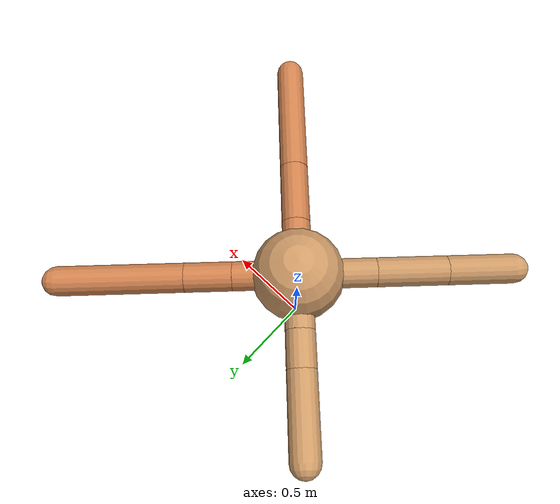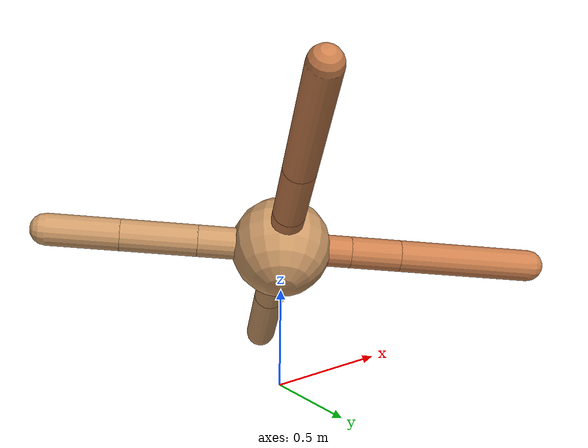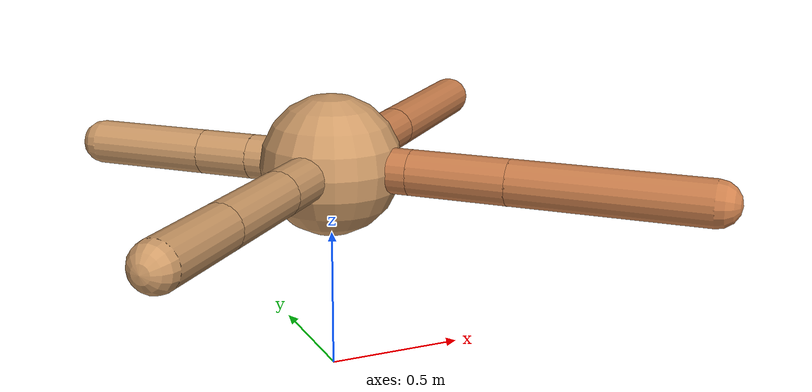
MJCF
<mujoco model="ant">
  <compiler angle="degree" coordinate="local" inertiafromgeom="true" />
  <option integrator="RK4" timestep="0.01" />
  <custom>
    <numeric data="0.0 0.0 0.55 1.0 0.0 0.0 0.0 0.0 1.0 0.0 -1.0 0.0 -1.0 0.0 1.0" name="init_qpos" />
  </custom>
  <default>
    <joint armature="1" damping="1" limited="true" />
    <geom conaffinity="0" condim="3" density="5.0" friction="1.5 0.1 0.1" margin="0.01" rgba="0.8 0.6 0.4 1" />
  </default>
  <worldbody>
    <body name="torso" pos="0 0 0.75">
      <geom name="torso_geom" pos="0 0 0" size="0.25" type="sphere" />

      <body name="front_left_leg" pos="0 0 0">
        <geom fromto="0.0 0.0 0.0 0.2470549974088061 0.2470549974088061 0.0" name="aux_1_geom" size="0.08" type="capsule" rgba=".8 .5 .3 1" />
        <body name="aux_1" pos="0.2470549974088061 0.2470549974088061 0.0">
          <joint axis="0 0 1" name="hip_1" pos="0.0 0.0 0.0" range="-40 40" type="hinge" />
          <geom fromto="0.0 0.0 0.0 0.17872875262681887 0.17872875262681887 0.0" name="left_leg_geom" size="0.08" type="capsule" rgba=".8 .5 .3 1" />
          <body pos="0.17872875262681887 0.17872875262681887 0.0" name="front_left_foot">
            <joint axis="-1 1 0" name="ankle_1" pos="0.0 0.0 0.0" range="30 100" type="hinge" />
            <geom fromto="0.0 0.0 0.0 0.47792064119971456 0.47792064119971456 0.0" name="left_ankle_geom" size="0.08" type="capsule" rgba=".8 .5 .3 1" />
          </body>
        </body>
      </body>
      <body name="front_right_leg" pos="0 0 0">
        <geom fromto="0.0 0.0 0.0 -0.21417004457279176 0.21417004457279176 0.0" name="aux_2_geom" size="0.08" type="capsule" />
        <body name="aux_2" pos="-0.21417004457279176 0.21417004457279176 0.0">
          <joint axis="0 0 1" name="hip_2" pos="0.0 0.0 0.0" range="-40 40" type="hinge" />
          <geom fromto="0.0 0.0 0.0 -0.13872900954714493 0.13872900954714493 0.0" name="right_leg_geom" size="0.08" type="capsule" />
          <body pos="-0.13872900954714493 0.13872900954714493 0.0" name="front_right_foot">
            <joint axis="1 1 0" name="ankle_2" pos="0.0 0.0 0.0" range="-100 -30" type="hinge" />
            <geom fromto="0.0 0.0 0.0 -0.30366723839906845 0.30366723839906845 0.0" name="right_ankle_geom" size="0.08" type="capsule" />
          </body>
        </body>
      </body>
      <body name="left_back_leg" pos="0 0 0">
        <geom fromto="0.0 0.0 0.0 -0.2952973608820903 -0.2952973608820903 0.0" name="aux_3_geom" size="0.08" type="capsule" />
        <body name="aux_3" pos="-0.2952973608820903 -0.2952973608820903 0.0">
          <joint axis="0 0 1" name="hip_3" pos="0.0 0.0 0.0" range="-40 40" type="hinge" />
          <geom fromto="0.0 0.0 0.0 -0.26716120297738194 -0.26716120297738194 0.0" name="back_leg_geom" size="0.08" type="capsule" />
          <body pos="-0.26716120297738194 -0.26716120297738194 0.0" name="left_back_foot">
            <joint axis="-1 1 0" name="ankle_3" pos="0.0 0.0 0.0" range="-100 -30" type="hinge" />
            <geom fromto="0.0 0.0 0.0 -0.25137162563154847 -0.25137162563154847 0.0" name="third_ankle_geom" size="0.08" type="capsule" />
          </body>
        </body>
      </body>
      <body name="right_back_leg" pos="0 0 0">
        <geom fromto="0.0 0.0 0.0 0.21222714637378434 -0.21222714637378434 0.0" name="aux_4_geom" size="0.08" type="capsule" rgba=".8 .5 .3 1" />
        <body name="aux_4" pos="0.21222714637378434 -0.21222714637378434 0.0">
          <joint axis="0 0 1" name="hip_4" pos="0.0 0.0 0.0" range="-40 40" type="hinge" />
          <geom fromto="0.0 0.0 0.0 0.24401559450621316 -0.24401559450621316 0.0" name="rightback_leg_geom" size="0.08" type="capsule" rgba=".8 .5 .3 1" />
          <body pos="0.24401559450621316 -0.24401559450621316 0.0" name="right_back_foot">
            <joint axis="1 1 0" name="ankle_4" pos="0.0 0.0 0.0" range="30 100" type="hinge" />
            <geom fromto="0.0 0.0 0.0 0.4752704182884257 -0.4752704182884257 0.0" name="fourth_ankle_geom" size="0.08" type="capsule" rgba=".8 .5 .3 1" />
          </body>
        </body>
      </body>
    </body>
  </worldbody>
  <actuator>
    <motor ctrllimited="true" ctrlrange="-1.0 1.0" joint="hip_4" gear="150" />
    <motor ctrllimited="true" ctrlrange="-1.0 1.0" joint="ankle_4" gear="150" />
    <motor ctrllimited="true" ctrlrange="-1.0 1.0" joint="hip_1" gear="150" />
    <motor ctrllimited="true" ctrlrange="-1.0 1.0" joint="ankle_1" gear="150" />
    <motor ctrllimited="true" ctrlrange="-1.0 1.0" joint="hip_2" gear="150" />
    <motor ctrllimited="true" ctrlrange="-1.0 1.0" joint="ankle_2" gear="150" />
    <motor ctrllimited="true" ctrlrange="-1.0 1.0" joint="hip_3" gear="150" />
    <motor ctrllimited="true" ctrlrange="-1.0 1.0" joint="ankle_3" gear="150" />
  </actuator>
</mujoco>
